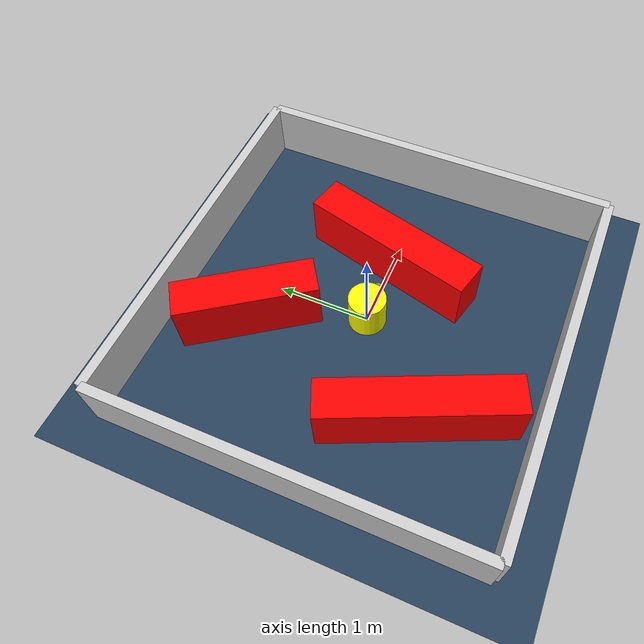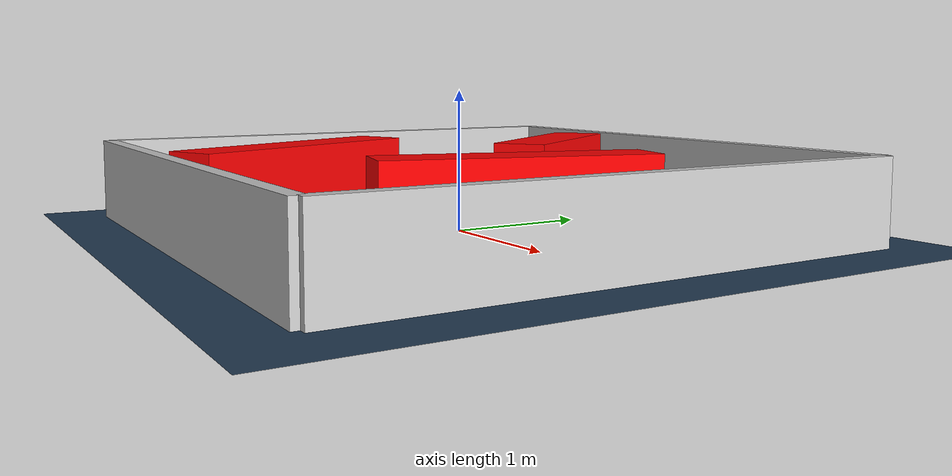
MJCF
<?xml version="1.0" ?>
<mujoco model="generated_environment">
  <option timestep="0.01" integrator="RK4" cone="elliptic"/>
  <default>
    <geom density="1"/>
  </default>
  <asset>
    <texture builtin="gradient" height="3072" rgb1="0.3 0.5 0.7" rgb2="0 0 0" type="skybox" width="512"/>
    <texture builtin="checker" height="300" mark="edge" markrgb="0.8 0.8 0.8" name="groundplane" rgb1="0.2 0.3 0.4" rgb2="0.1 0.2 0.3" type="2d" width="300"/>
    <material name="groundplane" reflectance="0.2" texrepeat="5 5" texture="groundplane" texuniform="true"/>
    <material name="robot" rgba="0.0 1.0 0.0 1"/>
  </asset>
  <worldbody>
    <light dir="0 0 -1" directional="true" pos="0 0 1.5"/>
    <geom condim="4" friction="1.0 0.005 0.001" material="groundplane" name="floor" size="0 0 0.05" type="plane"/>
    <body name="walls">
      <geom name="wall_1" condim="4" pos="-2.0 0.0 0.3" rgba="0.800000011920929 0.800000011920929 0.800000011920929 1.0" size="0.05 2.0 0.3" type="box"/>
      <geom name="wall_2" condim="4" pos="2.0 0.0 0.3" rgba="0.800000011920929 0.800000011920929 0.800000011920929 1.0" size="0.05 2.0 0.3" type="box"/>
      <geom name="wall_3" condim="4" pos="0.0 -2.0 0.3" rgba="0.800000011920929 0.800000011920929 0.800000011920929 1.0" size="2.0 0.05 0.3" type="box"/>
      <geom name="wall_4" condim="4" pos="0.0 2.0 0.3" rgba="0.800000011920929 0.800000011920929 0.800000011920929 1.0" size="2.0 0.05 0.3" type="box"/>
    </body>
    <body name="robot">
      <joint name="joint_x" type="slide" pos="0 0 0" axis="1 0 0"/>
      <joint name="joint_y" type="slide" pos="0 0 0" axis="0 1 0"/>
      <geom name="robot" type="sphere" pos="0.3 0.0 0.2" size="0.05" mass="5." friction="1.0 0.005 0.0001" condim="4" rgba="0.5 0.5 0.5 1.0"/>
      <site name="sensor_ball"/>
    </body>
    <body name="obstacle_movable_1">
      <geom name="obstacle_movable_1" condim="4" pos="0.0 0.0 0.2" euler="0 0 0.0" friction="1.0 0.005 0.001" rgba="1.0 1.0 0.0 1.0" size="0.2 0.2 0.0" type="cylinder" mass="0.1"/>
      <joint type="free"/>
    </body>
    <body name="obstacle_2_static">
      <geom name="obstacle_2_static" condim="4" pos="-0.9002168191651849 -0.894079089146436 0.3" euler="0 0 113.8338107145131" friction="1.0 0.005 0.001" rgba="1 0 0 1" size="0.9836473726658532 0.2 0.3" type="box"/>
    </body>
    <body name="obstacle_3_static">
      <geom name="obstacle_3_static" condim="4" pos="0.7445018061251858 -0.008079712055872434 0.3" euler="0 0 255.24314142648365" friction="1.0 0.005 0.001" rgba="1 0 0 1" size="0.9540667709004853 0.2 0.3" type="box"/>
    </body>
    <body name="obstacle_4_static">
      <geom name="obstacle_4_static" condim="4" pos="-0.45761492520671054 1.1400592937417515 0.3" euler="0 0 304.6886817510604" friction="1.0 0.005 0.001" rgba="1 0 0 1" size="0.7292012437823443 0.2 0.3" type="box"/>
    </body>
  </worldbody>
  <actuator>
    <motor name="actuator_x" joint="joint_x" gear="1" ctrlrange="-1 1"/>
    <motor name="actuator_y" joint="joint_y" gear="1" ctrlrange="-1 1"/>
  </actuator>
</mujoco>
